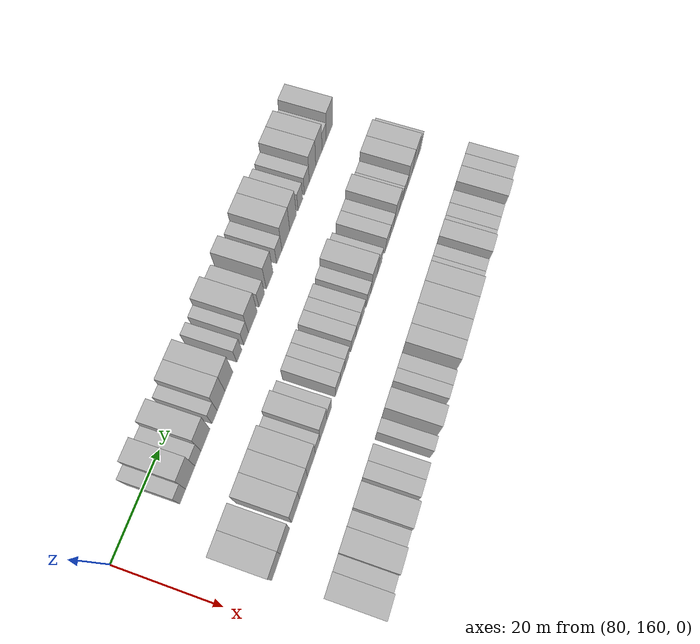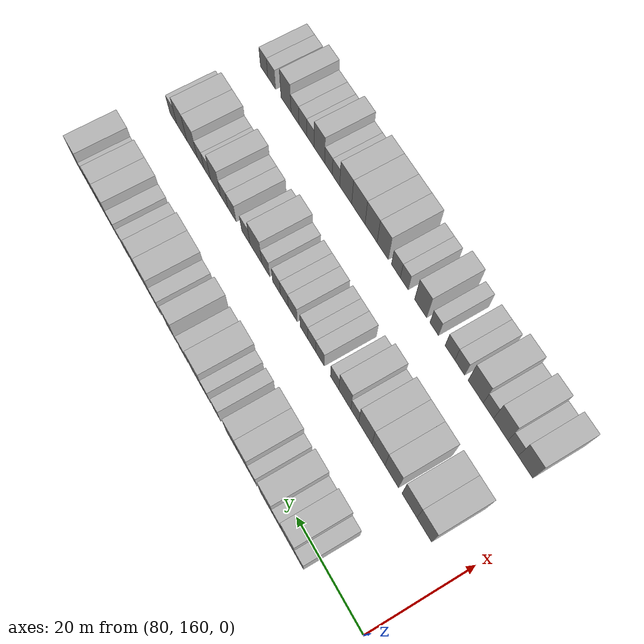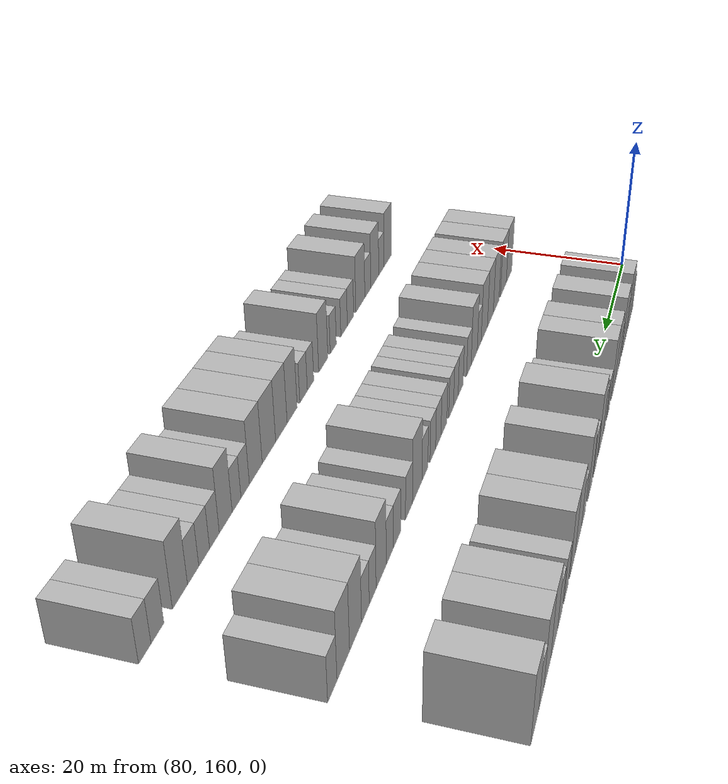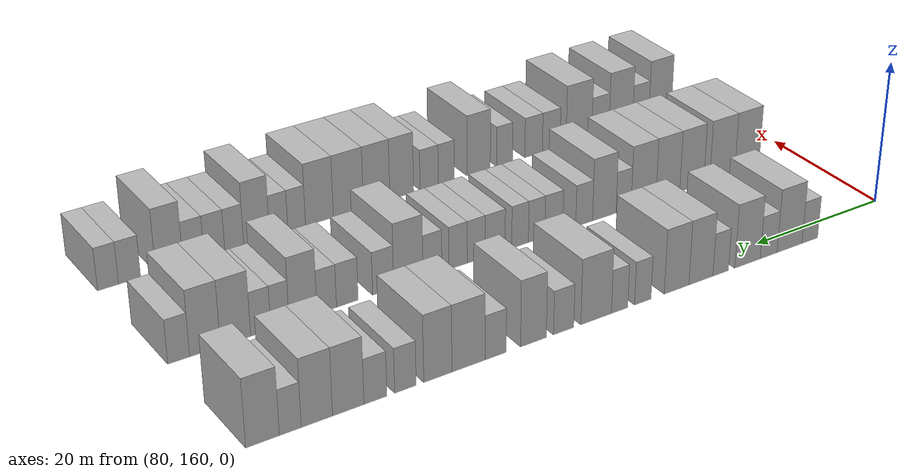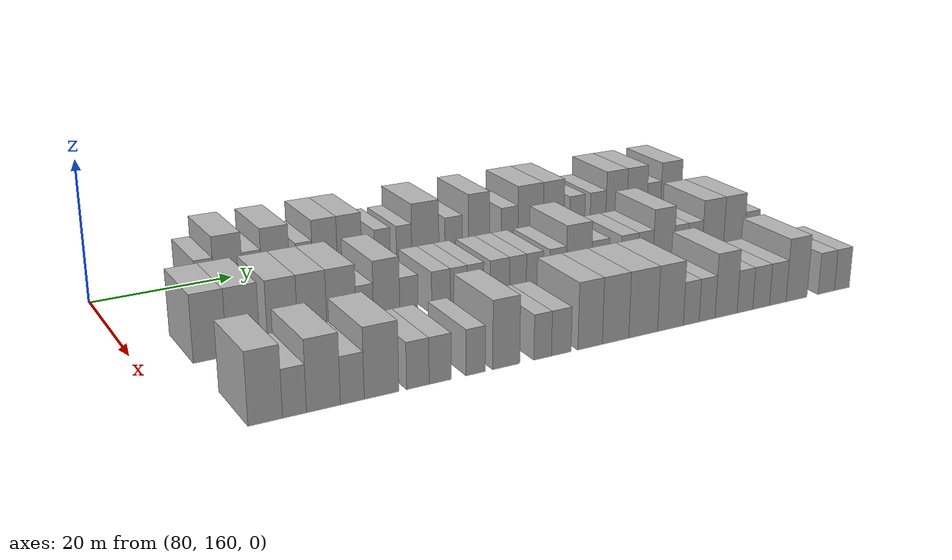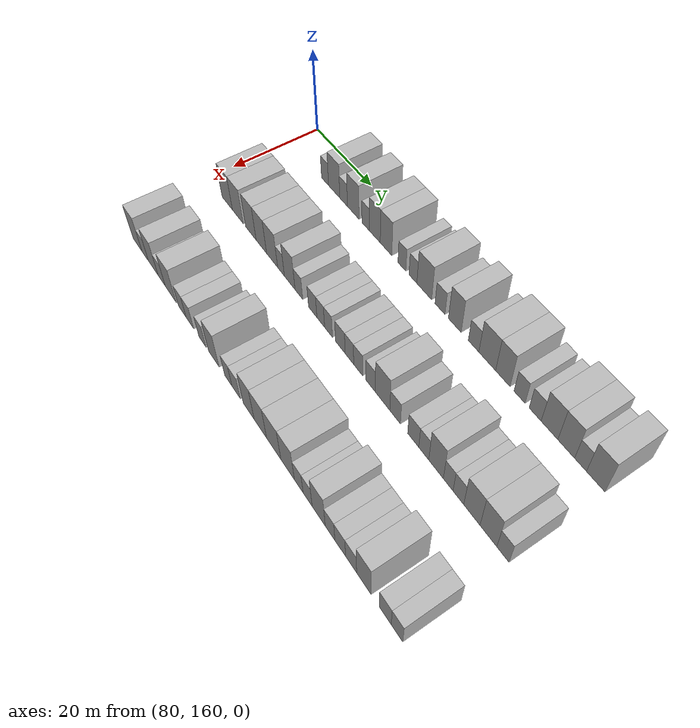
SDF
<sdf version="1.6">
 <world name="default">
  <model name="building_651">
   <static>1</static>
   <pose>82.0000 173.9683 0 0.000000 0.000000 0.000000</pose>
   <link name="link">
    <pose>0 0 3.00 0 0 0</pose>
    <collision name="collision"><geometry><box><size>10.0000 2.6058 6.0000</size></box></geometry></collision>
    <visual name="visual">
     <cast_shadows>0</cast_shadows>
     <geometry><box><size>10.0000 2.6058 6.0000</size></box></geometry>
     <material>
      <script>
       <uri>model://HANNAS_wall/materials/scripts</uri>
       <uri>model://HANNAS_wall/materials/textures</uri>
       <name>vrc/HANNAS_wall</name>
      </script>
     </material>
    </visual>
   </link>
  </model>
  <model name="building_652">
   <static>1</static>
   <pose>82.0000 177.3326 0 0.000000 0.000000 0.000000</pose>
   <link name="link">
    <pose>0 0 4.50 0 0 0</pose>
    <collision name="collision"><geometry><box><size>10.0000 4.1226 9.0000</size></box></geometry></collision>
    <visual name="visual">
     <cast_shadows>0</cast_shadows>
     <geometry><box><size>10.0000 4.1226 9.0000</size></box></geometry>
     <material>
      <script>
       <uri>model://HANNAS_wall/materials/scripts</uri>
       <uri>model://HANNAS_wall/materials/textures</uri>
       <name>vrc/HANNAS_wall</name>
      </script>
     </material>
    </visual>
   </link>
  </model>
  <model name="building_653">
   <static>1</static>
   <pose>82.0000 180.7584 0 0.000000 0.000000 0.000000</pose>
   <link name="link">
    <pose>0 0 3.00 0 0 0</pose>
    <collision name="collision"><geometry><box><size>10.0000 2.7291 6.0000</size></box></geometry></collision>
    <visual name="visual">
     <cast_shadows>0</cast_shadows>
     <geometry><box><size>10.0000 2.7291 6.0000</size></box></geometry>
     <material>
      <script>
       <uri>model://HANNAS_wall/materials/scripts</uri>
       <uri>model://HANNAS_wall/materials/textures</uri>
       <name>vrc/HANNAS_wall</name>
      </script>
     </material>
    </visual>
   </link>
  </model>
  <model name="building_654">
   <static>1</static>
   <pose>82.0000 184.1711 0 0.000000 0.000000 0.000000</pose>
   <link name="link">
    <pose>0 0 4.50 0 0 0</pose>
    <collision name="collision"><geometry><box><size>10.0000 4.0963 9.0000</size></box></geometry></collision>
    <visual name="visual">
     <cast_shadows>0</cast_shadows>
     <geometry><box><size>10.0000 4.0963 9.0000</size></box></geometry>
     <material>
      <script>
       <uri>model://HANNAS_wall/materials/scripts</uri>
       <uri>model://HANNAS_wall/materials/textures</uri>
       <name>vrc/HANNAS_wall</name>
      </script>
     </material>
    </visual>
   </link>
  </model>
  <model name="building_655">
   <static>1</static>
   <pose>82.0000 188.4400 0 0.000000 0.000000 0.000000</pose>
   <link name="link">
    <pose>0 0 3.00 0 0 0</pose>
    <collision name="collision"><geometry><box><size>10.0000 2.4415 6.0000</size></box></geometry></collision>
    <visual name="visual">
     <cast_shadows>0</cast_shadows>
     <geometry><box><size>10.0000 2.4415 6.0000</size></box></geometry>
     <material>
      <script>
       <uri>model://HANNAS_wall/materials/scripts</uri>
       <uri>model://HANNAS_wall/materials/textures</uri>
       <name>vrc/HANNAS_wall</name>
      </script>
     </material>
    </visual>
   </link>
  </model>
  <model name="building_656">
   <static>1</static>
   <pose>82.0000 191.5382 0 0.000000 0.000000 0.000000</pose>
   <link name="link">
    <pose>0 0 4.50 0 0 0</pose>
    <collision name="collision"><geometry><box><size>10.0000 3.7548 9.0000</size></box></geometry></collision>
    <visual name="visual">
     <cast_shadows>0</cast_shadows>
     <geometry><box><size>10.0000 3.7548 9.0000</size></box></geometry>
     <material>
      <script>
       <uri>model://HANNAS_wall/materials/scripts</uri>
       <uri>model://HANNAS_wall/materials/textures</uri>
       <name>vrc/HANNAS_wall</name>
      </script>
     </material>
    </visual>
   </link>
  </model>
  <model name="building_657">
   <static>1</static>
   <pose>82.0000 195.3073 0 0.000000 0.000000 0.000000</pose>
   <link name="link">
    <pose>0 0 4.50 0 0 0</pose>
    <collision name="collision"><geometry><box><size>10.0000 3.7835 9.0000</size></box></geometry></collision>
    <visual name="visual">
     <cast_shadows>0</cast_shadows>
     <geometry><box><size>10.0000 3.7835 9.0000</size></box></geometry>
     <material>
      <script>
       <uri>model://HANNAS_wall/materials/scripts</uri>
       <uri>model://HANNAS_wall/materials/textures</uri>
       <name>vrc/HANNAS_wall</name>
      </script>
     </material>
    </visual>
   </link>
  </model>
  <model name="building_658">
   <static>1</static>
   <pose>82.0000 200.4422 0 0.000000 0.000000 0.000000</pose>
   <link name="link">
    <pose>0 0 3.00 0 0 0</pose>
    <collision name="collision"><geometry><box><size>10.0000 2.4864 6.0000</size></box></geometry></collision>
    <visual name="visual">
     <cast_shadows>0</cast_shadows>
     <geometry><box><size>10.0000 2.4864 6.0000</size></box></geometry>
     <material>
      <script>
       <uri>model://HANNAS_wall/materials/scripts</uri>
       <uri>model://HANNAS_wall/materials/textures</uri>
       <name>vrc/HANNAS_wall</name>
      </script>
     </material>
    </visual>
   </link>
  </model>
  <model name="building_659">
   <static>1</static>
   <pose>82.0000 203.9033 0 0.000000 0.000000 0.000000</pose>
   <link name="link">
    <pose>0 0 3.00 0 0 0</pose>
    <collision name="collision"><geometry><box><size>10.0000 2.4358 6.0000</size></box></geometry></collision>
    <visual name="visual">
     <cast_shadows>0</cast_shadows>
     <geometry><box><size>10.0000 2.4358 6.0000</size></box></geometry>
     <material>
      <script>
       <uri>model://HANNAS_wall/materials/scripts</uri>
       <uri>model://HANNAS_wall/materials/textures</uri>
       <name>vrc/HANNAS_wall</name>
      </script>
     </material>
    </visual>
   </link>
  </model>
  <model name="building_660">
   <static>1</static>
   <pose>82.0000 207.3582 0 0.000000 0.000000 0.000000</pose>
   <link name="link">
    <pose>0 0 4.50 0 0 0</pose>
    <collision name="collision"><geometry><box><size>10.0000 4.4739 9.0000</size></box></geometry></collision>
    <visual name="visual">
     <cast_shadows>0</cast_shadows>
     <geometry><box><size>10.0000 4.4739 9.0000</size></box></geometry>
     <material>
      <script>
       <uri>model://HANNAS_wall/materials/scripts</uri>
       <uri>model://HANNAS_wall/materials/textures</uri>
       <name>vrc/HANNAS_wall</name>
      </script>
     </material>
    </visual>
   </link>
  </model>
  <model name="building_661">
   <static>1</static>
   <pose>82.0000 212.0545 0 0.000000 0.000000 0.000000</pose>
   <link name="link">
    <pose>0 0 3.00 0 0 0</pose>
    <collision name="collision"><geometry><box><size>10.0000 2.9187 6.0000</size></box></geometry></collision>
    <visual name="visual">
     <cast_shadows>0</cast_shadows>
     <geometry><box><size>10.0000 2.9187 6.0000</size></box></geometry>
     <material>
      <script>
       <uri>model://HANNAS_wall/materials/scripts</uri>
       <uri>model://HANNAS_wall/materials/textures</uri>
       <name>vrc/HANNAS_wall</name>
      </script>
     </material>
    </visual>
   </link>
  </model>
  <model name="building_662">
   <static>1</static>
   <pose>82.0000 216.3303 0 0.000000 0.000000 0.000000</pose>
   <link name="link">
    <pose>0 0 4.50 0 0 0</pose>
    <collision name="collision"><geometry><box><size>10.0000 3.6329 9.0000</size></box></geometry></collision>
    <visual name="visual">
     <cast_shadows>0</cast_shadows>
     <geometry><box><size>10.0000 3.6329 9.0000</size></box></geometry>
     <material>
      <script>
       <uri>model://HANNAS_wall/materials/scripts</uri>
       <uri>model://HANNAS_wall/materials/textures</uri>
       <name>vrc/HANNAS_wall</name>
      </script>
     </material>
    </visual>
   </link>
  </model>
  <model name="building_663">
   <static>1</static>
   <pose>82.0000 221.5967 0 0.000000 0.000000 0.000000</pose>
   <link name="link">
    <pose>0 0 3.00 0 0 0</pose>
    <collision name="collision"><geometry><box><size>10.0000 2.8999 6.0000</size></box></geometry></collision>
    <visual name="visual">
     <cast_shadows>0</cast_shadows>
     <geometry><box><size>10.0000 2.8999 6.0000</size></box></geometry>
     <material>
      <script>
       <uri>model://HANNAS_wall/materials/scripts</uri>
       <uri>model://HANNAS_wall/materials/textures</uri>
       <name>vrc/HANNAS_wall</name>
      </script>
     </material>
    </visual>
   </link>
  </model>
  <model name="building_664">
   <static>1</static>
   <pose>82.0000 225.2891 0 0.000000 0.000000 0.000000</pose>
   <link name="link">
    <pose>0 0 4.50 0 0 0</pose>
    <collision name="collision"><geometry><box><size>10.0000 4.4850 9.0000</size></box></geometry></collision>
    <visual name="visual">
     <cast_shadows>0</cast_shadows>
     <geometry><box><size>10.0000 4.4850 9.0000</size></box></geometry>
     <material>
      <script>
       <uri>model://HANNAS_wall/materials/scripts</uri>
       <uri>model://HANNAS_wall/materials/textures</uri>
       <name>vrc/HANNAS_wall</name>
      </script>
     </material>
    </visual>
   </link>
  </model>
  <model name="building_665">
   <static>1</static>
   <pose>82.0000 229.4076 0 0.000000 0.000000 0.000000</pose>
   <link name="link">
    <pose>0 0 4.50 0 0 0</pose>
    <collision name="collision"><geometry><box><size>10.0000 3.7520 9.0000</size></box></geometry></collision>
    <visual name="visual">
     <cast_shadows>0</cast_shadows>
     <geometry><box><size>10.0000 3.7520 9.0000</size></box></geometry>
     <material>
      <script>
       <uri>model://HANNAS_wall/materials/scripts</uri>
       <uri>model://HANNAS_wall/materials/textures</uri>
       <name>vrc/HANNAS_wall</name>
      </script>
     </material>
    </visual>
   </link>
  </model>
  <model name="building_666">
   <static>1</static>
   <pose>82.0000 233.6837 0 0.000000 0.000000 0.000000</pose>
   <link name="link">
    <pose>0 0 3.00 0 0 0</pose>
    <collision name="collision"><geometry><box><size>10.0000 2.8002 6.0000</size></box></geometry></collision>
    <visual name="visual">
     <cast_shadows>0</cast_shadows>
     <geometry><box><size>10.0000 2.8002 6.0000</size></box></geometry>
     <material>
      <script>
       <uri>model://HANNAS_wall/materials/scripts</uri>
       <uri>model://HANNAS_wall/materials/textures</uri>
       <name>vrc/HANNAS_wall</name>
      </script>
     </material>
    </visual>
   </link>
  </model>
  <model name="building_667">
   <static>1</static>
   <pose>82.0000 237.5527 0 0.000000 0.000000 0.000000</pose>
   <link name="link">
    <pose>0 0 3.00 0 0 0</pose>
    <collision name="collision"><geometry><box><size>10.0000 2.9378 6.0000</size></box></geometry></collision>
    <visual name="visual">
     <cast_shadows>0</cast_shadows>
     <geometry><box><size>10.0000 2.9378 6.0000</size></box></geometry>
     <material>
      <script>
       <uri>model://HANNAS_wall/materials/scripts</uri>
       <uri>model://HANNAS_wall/materials/textures</uri>
       <name>vrc/HANNAS_wall</name>
      </script>
     </material>
    </visual>
   </link>
  </model>
  <model name="building_668">
   <static>1</static>
   <pose>82.0000 241.0112 0 0.000000 0.000000 0.000000</pose>
   <link name="link">
    <pose>0 0 4.50 0 0 0</pose>
    <collision name="collision"><geometry><box><size>10.0000 3.9792 9.0000</size></box></geometry></collision>
    <visual name="visual">
     <cast_shadows>0</cast_shadows>
     <geometry><box><size>10.0000 3.9792 9.0000</size></box></geometry>
     <material>
      <script>
       <uri>model://HANNAS_wall/materials/scripts</uri>
       <uri>model://HANNAS_wall/materials/textures</uri>
       <name>vrc/HANNAS_wall</name>
      </script>
     </material>
    </visual>
   </link>
  </model>
  <model name="building_669">
   <static>1</static>
   <pose>82.0000 244.9432 0 0.000000 0.000000 0.000000</pose>
   <link name="link">
    <pose>0 0 4.50 0 0 0</pose>
    <collision name="collision"><geometry><box><size>10.0000 3.8849 9.0000</size></box></geometry></collision>
    <visual name="visual">
     <cast_shadows>0</cast_shadows>
     <geometry><box><size>10.0000 3.8849 9.0000</size></box></geometry>
     <material>
      <script>
       <uri>model://HANNAS_wall/materials/scripts</uri>
       <uri>model://HANNAS_wall/materials/textures</uri>
       <name>vrc/HANNAS_wall</name>
      </script>
     </material>
    </visual>
   </link>
  </model>
  <model name="building_670">
   <static>1</static>
   <pose>82.0000 248.2212 0 0.000000 0.000000 0.000000</pose>
   <link name="link">
    <pose>0 0 3.00 0 0 0</pose>
    <collision name="collision"><geometry><box><size>10.0000 2.6710 6.0000</size></box></geometry></collision>
    <visual name="visual">
     <cast_shadows>0</cast_shadows>
     <geometry><box><size>10.0000 2.6710 6.0000</size></box></geometry>
     <material>
      <script>
       <uri>model://HANNAS_wall/materials/scripts</uri>
       <uri>model://HANNAS_wall/materials/textures</uri>
       <name>vrc/HANNAS_wall</name>
      </script>
     </material>
    </visual>
   </link>
  </model>
  <model name="building_671">
   <static>1</static>
   <pose>82.0000 251.5903 0 0.000000 0.000000 0.000000</pose>
   <link name="link">
    <pose>0 0 4.50 0 0 0</pose>
    <collision name="collision"><geometry><box><size>10.0000 4.0673 9.0000</size></box></geometry></collision>
    <visual name="visual">
     <cast_shadows>0</cast_shadows>
     <geometry><box><size>10.0000 4.0673 9.0000</size></box></geometry>
     <material>
      <script>
       <uri>model://HANNAS_wall/materials/scripts</uri>
       <uri>model://HANNAS_wall/materials/textures</uri>
       <name>vrc/HANNAS_wall</name>
      </script>
     </material>
    </visual>
   </link>
  </model>
  <model name="building_831">
   <static>1</static>
   <pose>101.0000 168.3895 0 0.000000 0.000000 0.000000</pose>
   <link name="link">
    <pose>0 0 4.50 0 0 0</pose>
    <collision name="collision"><geometry><box><size>10.0000 4.2459 9.0000</size></box></geometry></collision>
    <visual name="visual">
     <cast_shadows>0</cast_shadows>
     <geometry><box><size>10.0000 4.2459 9.0000</size></box></geometry>
     <material>
      <script>
       <uri>model://HANNAS_wall/materials/scripts</uri>
       <uri>model://HANNAS_wall/materials/textures</uri>
       <name>vrc/HANNAS_wall</name>
      </script>
     </material>
    </visual>
   </link>
  </model>
  <model name="building_832">
   <static>1</static>
   <pose>101.0000 172.6775 0 0.000000 0.000000 0.000000</pose>
   <link name="link">
    <pose>0 0 4.50 0 0 0</pose>
    <collision name="collision"><geometry><box><size>10.0000 4.3300 9.0000</size></box></geometry></collision>
    <visual name="visual">
     <cast_shadows>0</cast_shadows>
     <geometry><box><size>10.0000 4.3300 9.0000</size></box></geometry>
     <material>
      <script>
       <uri>model://HANNAS_wall/materials/scripts</uri>
       <uri>model://HANNAS_wall/materials/textures</uri>
       <name>vrc/HANNAS_wall</name>
      </script>
     </material>
    </visual>
   </link>
  </model>
  <model name="building_833">
   <static>1</static>
   <pose>101.0000 177.8635 0 0.000000 0.000000 0.000000</pose>
   <link name="link">
    <pose>0 0 4.50 0 0 0</pose>
    <collision name="collision"><geometry><box><size>10.0000 4.0421 9.0000</size></box></geometry></collision>
    <visual name="visual">
     <cast_shadows>0</cast_shadows>
     <geometry><box><size>10.0000 4.0421 9.0000</size></box></geometry>
     <material>
      <script>
       <uri>model://HANNAS_wall/materials/scripts</uri>
       <uri>model://HANNAS_wall/materials/textures</uri>
       <name>vrc/HANNAS_wall</name>
      </script>
     </material>
    </visual>
   </link>
  </model>
  <model name="building_834">
   <static>1</static>
   <pose>101.0000 181.8662 0 0.000000 0.000000 0.000000</pose>
   <link name="link">
    <pose>0 0 4.50 0 0 0</pose>
    <collision name="collision"><geometry><box><size>10.0000 3.9632 9.0000</size></box></geometry></collision>
    <visual name="visual">
     <cast_shadows>0</cast_shadows>
     <geometry><box><size>10.0000 3.9632 9.0000</size></box></geometry>
     <material>
      <script>
       <uri>model://HANNAS_wall/materials/scripts</uri>
       <uri>model://HANNAS_wall/materials/textures</uri>
       <name>vrc/HANNAS_wall</name>
      </script>
     </material>
    </visual>
   </link>
  </model>
  <model name="building_835">
   <static>1</static>
   <pose>101.0000 185.8865 0 0.000000 0.000000 0.000000</pose>
   <link name="link">
    <pose>0 0 4.50 0 0 0</pose>
    <collision name="collision"><geometry><box><size>10.0000 4.0775 9.0000</size></box></geometry></collision>
    <visual name="visual">
     <cast_shadows>0</cast_shadows>
     <geometry><box><size>10.0000 4.0775 9.0000</size></box></geometry>
     <material>
      <script>
       <uri>model://HANNAS_wall/materials/scripts</uri>
       <uri>model://HANNAS_wall/materials/textures</uri>
       <name>vrc/HANNAS_wall</name>
      </script>
     </material>
    </visual>
   </link>
  </model>
  <model name="building_836">
   <static>1</static>
   <pose>101.0000 189.1425 0 0.000000 0.000000 0.000000</pose>
   <link name="link">
    <pose>0 0 3.00 0 0 0</pose>
    <collision name="collision"><geometry><box><size>10.0000 2.4345 6.0000</size></box></geometry></collision>
    <visual name="visual">
     <cast_shadows>0</cast_shadows>
     <geometry><box><size>10.0000 2.4345 6.0000</size></box></geometry>
     <material>
      <script>
       <uri>model://HANNAS_wall/materials/scripts</uri>
       <uri>model://HANNAS_wall/materials/textures</uri>
       <name>vrc/HANNAS_wall</name>
      </script>
     </material>
    </visual>
   </link>
  </model>
  <model name="building_837">
   <static>1</static>
   <pose>101.0000 192.2405 0 0.000000 0.000000 0.000000</pose>
   <link name="link">
    <pose>0 0 4.50 0 0 0</pose>
    <collision name="collision"><geometry><box><size>10.0000 3.7615 9.0000</size></box></geometry></collision>
    <visual name="visual">
     <cast_shadows>0</cast_shadows>
     <geometry><box><size>10.0000 3.7615 9.0000</size></box></geometry>
     <material>
      <script>
       <uri>model://HANNAS_wall/materials/scripts</uri>
       <uri>model://HANNAS_wall/materials/textures</uri>
       <name>vrc/HANNAS_wall</name>
      </script>
     </material>
    </visual>
   </link>
  </model>
  <model name="building_838">
   <static>1</static>
   <pose>101.0000 195.4514 0 0.000000 0.000000 0.000000</pose>
   <link name="link">
    <pose>0 0 3.00 0 0 0</pose>
    <collision name="collision"><geometry><box><size>10.0000 2.6603 6.0000</size></box></geometry></collision>
    <visual name="visual">
     <cast_shadows>0</cast_shadows>
     <geometry><box><size>10.0000 2.6603 6.0000</size></box></geometry>
     <material>
      <script>
       <uri>model://HANNAS_wall/materials/scripts</uri>
       <uri>model://HANNAS_wall/materials/textures</uri>
       <name>vrc/HANNAS_wall</name>
      </script>
     </material>
    </visual>
   </link>
  </model>
  <model name="building_839">
   <static>1</static>
   <pose>101.0000 200.1791 0 0.000000 0.000000 0.000000</pose>
   <link name="link">
    <pose>0 0 3.00 0 0 0</pose>
    <collision name="collision"><geometry><box><size>10.0000 2.7952 6.0000</size></box></geometry></collision>
    <visual name="visual">
     <cast_shadows>0</cast_shadows>
     <geometry><box><size>10.0000 2.7952 6.0000</size></box></geometry>
     <material>
      <script>
       <uri>model://HANNAS_wall/materials/scripts</uri>
       <uri>model://HANNAS_wall/materials/textures</uri>
       <name>vrc/HANNAS_wall</name>
      </script>
     </material>
    </visual>
   </link>
  </model>
  <model name="building_840">
   <static>1</static>
   <pose>101.0000 202.8418 0 0.000000 0.000000 0.000000</pose>
   <link name="link">
    <pose>0 0 3.00 0 0 0</pose>
    <collision name="collision"><geometry><box><size>10.0000 2.5302 6.0000</size></box></geometry></collision>
    <visual name="visual">
     <cast_shadows>0</cast_shadows>
     <geometry><box><size>10.0000 2.5302 6.0000</size></box></geometry>
     <material>
      <script>
       <uri>model://HANNAS_wall/materials/scripts</uri>
       <uri>model://HANNAS_wall/materials/textures</uri>
       <name>vrc/HANNAS_wall</name>
      </script>
     </material>
    </visual>
   </link>
  </model>
  <model name="building_841">
   <static>1</static>
   <pose>101.0000 205.3772 0 0.000000 0.000000 0.000000</pose>
   <link name="link">
    <pose>0 0 3.00 0 0 0</pose>
    <collision name="collision"><geometry><box><size>10.0000 2.5405 6.0000</size></box></geometry></collision>
    <visual name="visual">
     <cast_shadows>0</cast_shadows>
     <geometry><box><size>10.0000 2.5405 6.0000</size></box></geometry>
     <material>
      <script>
       <uri>model://HANNAS_wall/materials/scripts</uri>
       <uri>model://HANNAS_wall/materials/textures</uri>
       <name>vrc/HANNAS_wall</name>
      </script>
     </material>
    </visual>
   </link>
  </model>
  <model name="building_842">
   <static>1</static>
   <pose>101.0000 209.1440 0 0.000000 0.000000 0.000000</pose>
   <link name="link">
    <pose>0 0 3.00 0 0 0</pose>
    <collision name="collision"><geometry><box><size>10.0000 2.9933 6.0000</size></box></geometry></collision>
    <visual name="visual">
     <cast_shadows>0</cast_shadows>
     <geometry><box><size>10.0000 2.9933 6.0000</size></box></geometry>
     <material>
      <script>
       <uri>model://HANNAS_wall/materials/scripts</uri>
       <uri>model://HANNAS_wall/materials/textures</uri>
       <name>vrc/HANNAS_wall</name>
      </script>
     </material>
    </visual>
   </link>
  </model>
  <model name="building_843">
   <static>1</static>
   <pose>101.0000 211.9645 0 0.000000 0.000000 0.000000</pose>
   <link name="link">
    <pose>0 0 3.00 0 0 0</pose>
    <collision name="collision"><geometry><box><size>10.0000 2.6475 6.0000</size></box></geometry></collision>
    <visual name="visual">
     <cast_shadows>0</cast_shadows>
     <geometry><box><size>10.0000 2.6475 6.0000</size></box></geometry>
     <material>
      <script>
       <uri>model://HANNAS_wall/materials/scripts</uri>
       <uri>model://HANNAS_wall/materials/textures</uri>
       <name>vrc/HANNAS_wall</name>
      </script>
     </material>
    </visual>
   </link>
  </model>
  <model name="building_844">
   <static>1</static>
   <pose>101.0000 214.6370 0 0.000000 0.000000 0.000000</pose>
   <link name="link">
    <pose>0 0 3.00 0 0 0</pose>
    <collision name="collision"><geometry><box><size>10.0000 2.6977 6.0000</size></box></geometry></collision>
    <visual name="visual">
     <cast_shadows>0</cast_shadows>
     <geometry><box><size>10.0000 2.6977 6.0000</size></box></geometry>
     <material>
      <script>
       <uri>model://HANNAS_wall/materials/scripts</uri>
       <uri>model://HANNAS_wall/materials/textures</uri>
       <name>vrc/HANNAS_wall</name>
      </script>
     </material>
    </visual>
   </link>
  </model>
  <model name="building_845">
   <static>1</static>
   <pose>101.0000 218.3506 0 0.000000 0.000000 0.000000</pose>
   <link name="link">
    <pose>0 0 3.00 0 0 0</pose>
    <collision name="collision"><geometry><box><size>10.0000 2.7295 6.0000</size></box></geometry></collision>
    <visual name="visual">
     <cast_shadows>0</cast_shadows>
     <geometry><box><size>10.0000 2.7295 6.0000</size></box></geometry>
     <material>
      <script>
       <uri>model://HANNAS_wall/materials/scripts</uri>
       <uri>model://HANNAS_wall/materials/textures</uri>
       <name>vrc/HANNAS_wall</name>
      </script>
     </material>
    </visual>
   </link>
  </model>
  <model name="building_846">
   <static>1</static>
   <pose>101.0000 221.8118 0 0.000000 0.000000 0.000000</pose>
   <link name="link">
    <pose>0 0 4.50 0 0 0</pose>
    <collision name="collision"><geometry><box><size>10.0000 4.1928 9.0000</size></box></geometry></collision>
    <visual name="visual">
     <cast_shadows>0</cast_shadows>
     <geometry><box><size>10.0000 4.1928 9.0000</size></box></geometry>
     <material>
      <script>
       <uri>model://HANNAS_wall/materials/scripts</uri>
       <uri>model://HANNAS_wall/materials/textures</uri>
       <name>vrc/HANNAS_wall</name>
      </script>
     </material>
    </visual>
   </link>
  </model>
  <model name="building_847">
   <static>1</static>
   <pose>101.0000 225.3882 0 0.000000 0.000000 0.000000</pose>
   <link name="link">
    <pose>0 0 3.00 0 0 0</pose>
    <collision name="collision"><geometry><box><size>10.0000 2.9600 6.0000</size></box></geometry></collision>
    <visual name="visual">
     <cast_shadows>0</cast_shadows>
     <geometry><box><size>10.0000 2.9600 6.0000</size></box></geometry>
     <material>
      <script>
       <uri>model://HANNAS_wall/materials/scripts</uri>
       <uri>model://HANNAS_wall/materials/textures</uri>
       <name>vrc/HANNAS_wall</name>
      </script>
     </material>
    </visual>
   </link>
  </model>
  <model name="building_848">
   <static>1</static>
   <pose>101.0000 230.3605 0 0.000000 0.000000 0.000000</pose>
   <link name="link">
    <pose>0 0 3.00 0 0 0</pose>
    <collision name="collision"><geometry><box><size>10.0000 2.9847 6.0000</size></box></geometry></collision>
    <visual name="visual">
     <cast_shadows>0</cast_shadows>
     <geometry><box><size>10.0000 2.9847 6.0000</size></box></geometry>
     <material>
      <script>
       <uri>model://HANNAS_wall/materials/scripts</uri>
       <uri>model://HANNAS_wall/materials/textures</uri>
       <name>vrc/HANNAS_wall</name>
      </script>
     </material>
    </visual>
   </link>
  </model>
  <model name="building_849">
   <static>1</static>
   <pose>101.0000 233.1683 0 0.000000 0.000000 0.000000</pose>
   <link name="link">
    <pose>0 0 3.00 0 0 0</pose>
    <collision name="collision"><geometry><box><size>10.0000 2.6309 6.0000</size></box></geometry></collision>
    <visual name="visual">
     <cast_shadows>0</cast_shadows>
     <geometry><box><size>10.0000 2.6309 6.0000</size></box></geometry>
     <material>
      <script>
       <uri>model://HANNAS_wall/materials/scripts</uri>
       <uri>model://HANNAS_wall/materials/textures</uri>
       <name>vrc/HANNAS_wall</name>
      </script>
     </material>
    </visual>
   </link>
  </model>
  <model name="building_850">
   <static>1</static>
   <pose>101.0000 236.3592 0 0.000000 0.000000 0.000000</pose>
   <link name="link">
    <pose>0 0 4.50 0 0 0</pose>
    <collision name="collision"><geometry><box><size>10.0000 3.7508 9.0000</size></box></geometry></collision>
    <visual name="visual">
     <cast_shadows>0</cast_shadows>
     <geometry><box><size>10.0000 3.7508 9.0000</size></box></geometry>
     <material>
      <script>
       <uri>model://HANNAS_wall/materials/scripts</uri>
       <uri>model://HANNAS_wall/materials/textures</uri>
       <name>vrc/HANNAS_wall</name>
      </script>
     </material>
    </visual>
   </link>
  </model>
  <model name="building_851">
   <static>1</static>
   <pose>101.0000 239.4488 0 0.000000 0.000000 0.000000</pose>
   <link name="link">
    <pose>0 0 3.00 0 0 0</pose>
    <collision name="collision"><geometry><box><size>10.0000 2.4284 6.0000</size></box></geometry></collision>
    <visual name="visual">
     <cast_shadows>0</cast_shadows>
     <geometry><box><size>10.0000 2.4284 6.0000</size></box></geometry>
     <material>
      <script>
       <uri>model://HANNAS_wall/materials/scripts</uri>
       <uri>model://HANNAS_wall/materials/textures</uri>
       <name>vrc/HANNAS_wall</name>
      </script>
     </material>
    </visual>
   </link>
  </model>
  <model name="building_852">
   <static>1</static>
   <pose>101.0000 241.9811 0 0.000000 0.000000 0.000000</pose>
   <link name="link">
    <pose>0 0 3.00 0 0 0</pose>
    <collision name="collision"><geometry><box><size>10.0000 2.6361 6.0000</size></box></geometry></collision>
    <visual name="visual">
     <cast_shadows>0</cast_shadows>
     <geometry><box><size>10.0000 2.6361 6.0000</size></box></geometry>
     <material>
      <script>
       <uri>model://HANNAS_wall/materials/scripts</uri>
       <uri>model://HANNAS_wall/materials/textures</uri>
       <name>vrc/HANNAS_wall</name>
      </script>
     </material>
    </visual>
   </link>
  </model>
  <model name="building_853">
   <static>1</static>
   <pose>101.0000 245.2603 0 0.000000 0.000000 0.000000</pose>
   <link name="link">
    <pose>0 0 4.50 0 0 0</pose>
    <collision name="collision"><geometry><box><size>10.0000 3.9224 9.0000</size></box></geometry></collision>
    <visual name="visual">
     <cast_shadows>0</cast_shadows>
     <geometry><box><size>10.0000 3.9224 9.0000</size></box></geometry>
     <material>
      <script>
       <uri>model://HANNAS_wall/materials/scripts</uri>
       <uri>model://HANNAS_wall/materials/textures</uri>
       <name>vrc/HANNAS_wall</name>
      </script>
     </material>
    </visual>
   </link>
  </model>
  <model name="building_854">
   <static>1</static>
   <pose>101.0000 249.1747 0 0.000000 0.000000 0.000000</pose>
   <link name="link">
    <pose>0 0 4.50 0 0 0</pose>
    <collision name="collision"><geometry><box><size>10.0000 3.9064 9.0000</size></box></geometry></collision>
    <visual name="visual">
     <cast_shadows>0</cast_shadows>
     <geometry><box><size>10.0000 3.9064 9.0000</size></box></geometry>
     <material>
      <script>
       <uri>model://HANNAS_wall/materials/scripts</uri>
       <uri>model://HANNAS_wall/materials/textures</uri>
       <name>vrc/HANNAS_wall</name>
      </script>
     </material>
    </visual>
   </link>
  </model>
  <model name="building_855">
   <static>1</static>
   <pose>101.0000 252.5063 0 0.000000 0.000000 0.000000</pose>
   <link name="link">
    <pose>0 0 3.00 0 0 0</pose>
    <collision name="collision"><geometry><box><size>10.0000 2.7569 6.0000</size></box></geometry></collision>
    <visual name="visual">
     <cast_shadows>0</cast_shadows>
     <geometry><box><size>10.0000 2.7569 6.0000</size></box></geometry>
     <material>
      <script>
       <uri>model://HANNAS_wall/materials/scripts</uri>
       <uri>model://HANNAS_wall/materials/textures</uri>
       <name>vrc/HANNAS_wall</name>
      </script>
     </material>
    </visual>
   </link>
  </model>
  <model name="building_1015">
   <static>1</static>
   <pose>120.0000 168.5036 0 0.000000 0.000000 0.000000</pose>
   <link name="link">
    <pose>0 0 4.50 0 0 0</pose>
    <collision name="collision"><geometry><box><size>10.0000 4.0538 9.0000</size></box></geometry></collision>
    <visual name="visual">
     <cast_shadows>0</cast_shadows>
     <geometry><box><size>10.0000 4.0538 9.0000</size></box></geometry>
     <material>
      <script>
       <uri>model://HANNAS_wall/materials/scripts</uri>
       <uri>model://HANNAS_wall/materials/textures</uri>
       <name>vrc/HANNAS_wall</name>
      </script>
     </material>
    </visual>
   </link>
  </model>
  <model name="building_1016">
   <static>1</static>
   <pose>120.0000 171.9539 0 0.000000 0.000000 0.000000</pose>
   <link name="link">
    <pose>0 0 3.00 0 0 0</pose>
    <collision name="collision"><geometry><box><size>10.0000 2.8468 6.0000</size></box></geometry></collision>
    <visual name="visual">
     <cast_shadows>0</cast_shadows>
     <geometry><box><size>10.0000 2.8468 6.0000</size></box></geometry>
     <material>
      <script>
       <uri>model://HANNAS_wall/materials/scripts</uri>
       <uri>model://HANNAS_wall/materials/textures</uri>
       <name>vrc/HANNAS_wall</name>
      </script>
     </material>
    </visual>
   </link>
  </model>
  <model name="building_1017">
   <static>1</static>
   <pose>120.0000 175.4474 0 0.000000 0.000000 0.000000</pose>
   <link name="link">
    <pose>0 0 4.50 0 0 0</pose>
    <collision name="collision"><geometry><box><size>10.0000 4.1403 9.0000</size></box></geometry></collision>
    <visual name="visual">
     <cast_shadows>0</cast_shadows>
     <geometry><box><size>10.0000 4.1403 9.0000</size></box></geometry>
     <material>
      <script>
       <uri>model://HANNAS_wall/materials/scripts</uri>
       <uri>model://HANNAS_wall/materials/textures</uri>
       <name>vrc/HANNAS_wall</name>
      </script>
     </material>
    </visual>
   </link>
  </model>
  <model name="building_1018">
   <static>1</static>
   <pose>120.0000 178.9986 0 0.000000 0.000000 0.000000</pose>
   <link name="link">
    <pose>0 0 3.00 0 0 0</pose>
    <collision name="collision"><geometry><box><size>10.0000 2.9621 6.0000</size></box></geometry></collision>
    <visual name="visual">
     <cast_shadows>0</cast_shadows>
     <geometry><box><size>10.0000 2.9621 6.0000</size></box></geometry>
     <material>
      <script>
       <uri>model://HANNAS_wall/materials/scripts</uri>
       <uri>model://HANNAS_wall/materials/textures</uri>
       <name>vrc/HANNAS_wall</name>
      </script>
     </material>
    </visual>
   </link>
  </model>
  <model name="building_1019">
   <static>1</static>
   <pose>120.0000 182.6797 0 0.000000 0.000000 0.000000</pose>
   <link name="link">
    <pose>0 0 4.50 0 0 0</pose>
    <collision name="collision"><geometry><box><size>10.0000 4.4001 9.0000</size></box></geometry></collision>
    <visual name="visual">
     <cast_shadows>0</cast_shadows>
     <geometry><box><size>10.0000 4.4001 9.0000</size></box></geometry>
     <material>
      <script>
       <uri>model://HANNAS_wall/materials/scripts</uri>
       <uri>model://HANNAS_wall/materials/textures</uri>
       <name>vrc/HANNAS_wall</name>
      </script>
     </material>
    </visual>
   </link>
  </model>
  <model name="building_1020">
   <static>1</static>
   <pose>120.0000 187.3567 0 0.000000 0.000000 0.000000</pose>
   <link name="link">
    <pose>0 0 3.00 0 0 0</pose>
    <collision name="collision"><geometry><box><size>10.0000 2.9538 6.0000</size></box></geometry></collision>
    <visual name="visual">
     <cast_shadows>0</cast_shadows>
     <geometry><box><size>10.0000 2.9538 6.0000</size></box></geometry>
     <material>
      <script>
       <uri>model://HANNAS_wall/materials/scripts</uri>
       <uri>model://HANNAS_wall/materials/textures</uri>
       <name>vrc/HANNAS_wall</name>
      </script>
     </material>
    </visual>
   </link>
  </model>
  <model name="building_1021">
   <static>1</static>
   <pose>120.0000 190.2963 0 0.000000 0.000000 0.000000</pose>
   <link name="link">
    <pose>0 0 3.00 0 0 0</pose>
    <collision name="collision"><geometry><box><size>10.0000 2.9254 6.0000</size></box></geometry></collision>
    <visual name="visual">
     <cast_shadows>0</cast_shadows>
     <geometry><box><size>10.0000 2.9254 6.0000</size></box></geometry>
     <material>
      <script>
       <uri>model://HANNAS_wall/materials/scripts</uri>
       <uri>model://HANNAS_wall/materials/textures</uri>
       <name>vrc/HANNAS_wall</name>
      </script>
     </material>
    </visual>
   </link>
  </model>
  <model name="building_1022">
   <static>1</static>
   <pose>120.0000 195.0743 0 0.000000 0.000000 0.000000</pose>
   <link name="link">
    <pose>0 0 3.00 0 0 0</pose>
    <collision name="collision"><geometry><box><size>10.0000 2.6306 6.0000</size></box></geometry></collision>
    <visual name="visual">
     <cast_shadows>0</cast_shadows>
     <geometry><box><size>10.0000 2.6306 6.0000</size></box></geometry>
     <material>
      <script>
       <uri>model://HANNAS_wall/materials/scripts</uri>
       <uri>model://HANNAS_wall/materials/textures</uri>
       <name>vrc/HANNAS_wall</name>
      </script>
     </material>
    </visual>
   </link>
  </model>
  <model name="building_1023">
   <static>1</static>
   <pose>120.0000 199.2739 0 0.000000 0.000000 0.000000</pose>
   <link name="link">
    <pose>0 0 4.50 0 0 0</pose>
    <collision name="collision"><geometry><box><size>10.0000 3.7686 9.0000</size></box></geometry></collision>
    <visual name="visual">
     <cast_shadows>0</cast_shadows>
     <geometry><box><size>10.0000 3.7686 9.0000</size></box></geometry>
     <material>
      <script>
       <uri>model://HANNAS_wall/materials/scripts</uri>
       <uri>model://HANNAS_wall/materials/textures</uri>
       <name>vrc/HANNAS_wall</name>
      </script>
     </material>
    </visual>
   </link>
  </model>
  <model name="building_1024">
   <static>1</static>
   <pose>120.0000 204.4187 0 0.000000 0.000000 0.000000</pose>
   <link name="link">
    <pose>0 0 3.00 0 0 0</pose>
    <collision name="collision"><geometry><box><size>10.0000 2.5211 6.0000</size></box></geometry></collision>
    <visual name="visual">
     <cast_shadows>0</cast_shadows>
     <geometry><box><size>10.0000 2.5211 6.0000</size></box></geometry>
     <material>
      <script>
       <uri>model://HANNAS_wall/materials/scripts</uri>
       <uri>model://HANNAS_wall/materials/textures</uri>
       <name>vrc/HANNAS_wall</name>
      </script>
     </material>
    </visual>
   </link>
  </model>
  <model name="building_1025">
   <static>1</static>
   <pose>120.0000 207.1046 0 0.000000 0.000000 0.000000</pose>
   <link name="link">
    <pose>0 0 3.00 0 0 0</pose>
    <collision name="collision"><geometry><box><size>10.0000 2.8506 6.0000</size></box></geometry></collision>
    <visual name="visual">
     <cast_shadows>0</cast_shadows>
     <geometry><box><size>10.0000 2.8506 6.0000</size></box></geometry>
     <material>
      <script>
       <uri>model://HANNAS_wall/materials/scripts</uri>
       <uri>model://HANNAS_wall/materials/textures</uri>
       <name>vrc/HANNAS_wall</name>
      </script>
     </material>
    </visual>
   </link>
  </model>
  <model name="building_1026">
   <static>1</static>
   <pose>120.0000 211.3550 0 0.000000 0.000000 0.000000</pose>
   <link name="link">
    <pose>0 0 4.50 0 0 0</pose>
    <collision name="collision"><geometry><box><size>10.0000 3.6503 9.0000</size></box></geometry></collision>
    <visual name="visual">
     <cast_shadows>0</cast_shadows>
     <geometry><box><size>10.0000 3.6503 9.0000</size></box></geometry>
     <material>
      <script>
       <uri>model://HANNAS_wall/materials/scripts</uri>
       <uri>model://HANNAS_wall/materials/textures</uri>
       <name>vrc/HANNAS_wall</name>
      </script>
     </material>
    </visual>
   </link>
  </model>
  <model name="building_1027">
   <static>1</static>
   <pose>120.0000 215.1849 0 0.000000 0.000000 0.000000</pose>
   <link name="link">
    <pose>0 0 4.50 0 0 0</pose>
    <collision name="collision"><geometry><box><size>10.0000 4.0094 9.0000</size></box></geometry></collision>
    <visual name="visual">
     <cast_shadows>0</cast_shadows>
     <geometry><box><size>10.0000 4.0094 9.0000</size></box></geometry>
     <material>
      <script>
       <uri>model://HANNAS_wall/materials/scripts</uri>
       <uri>model://HANNAS_wall/materials/textures</uri>
       <name>vrc/HANNAS_wall</name>
      </script>
     </material>
    </visual>
   </link>
  </model>
  <model name="building_1028">
   <static>1</static>
   <pose>120.0000 219.4239 0 0.000000 0.000000 0.000000</pose>
   <link name="link">
    <pose>0 0 4.50 0 0 0</pose>
    <collision name="collision"><geometry><box><size>10.0000 4.4686 9.0000</size></box></geometry></collision>
    <visual name="visual">
     <cast_shadows>0</cast_shadows>
     <geometry><box><size>10.0000 4.4686 9.0000</size></box></geometry>
     <material>
      <script>
       <uri>model://HANNAS_wall/materials/scripts</uri>
       <uri>model://HANNAS_wall/materials/textures</uri>
       <name>vrc/HANNAS_wall</name>
      </script>
     </material>
    </visual>
   </link>
  </model>
  <model name="building_1029">
   <static>1</static>
   <pose>120.0000 223.7004 0 0.000000 0.000000 0.000000</pose>
   <link name="link">
    <pose>0 0 4.50 0 0 0</pose>
    <collision name="collision"><geometry><box><size>10.0000 4.0843 9.0000</size></box></geometry></collision>
    <visual name="visual">
     <cast_shadows>0</cast_shadows>
     <geometry><box><size>10.0000 4.0843 9.0000</size></box></geometry>
     <material>
      <script>
       <uri>model://HANNAS_wall/materials/scripts</uri>
       <uri>model://HANNAS_wall/materials/textures</uri>
       <name>vrc/HANNAS_wall</name>
      </script>
     </material>
    </visual>
   </link>
  </model>
  <model name="building_1030">
   <static>1</static>
   <pose>120.0000 227.0198 0 0.000000 0.000000 0.000000</pose>
   <link name="link">
    <pose>0 0 3.00 0 0 0</pose>
    <collision name="collision"><geometry><box><size>10.0000 2.5546 6.0000</size></box></geometry></collision>
    <visual name="visual">
     <cast_shadows>0</cast_shadows>
     <geometry><box><size>10.0000 2.5546 6.0000</size></box></geometry>
     <material>
      <script>
       <uri>model://HANNAS_wall/materials/scripts</uri>
       <uri>model://HANNAS_wall/materials/textures</uri>
       <name>vrc/HANNAS_wall</name>
      </script>
     </material>
    </visual>
   </link>
  </model>
  <model name="building_1031">
   <static>1</static>
   <pose>120.0000 229.6015 0 0.000000 0.000000 0.000000</pose>
   <link name="link">
    <pose>0 0 3.00 0 0 0</pose>
    <collision name="collision"><geometry><box><size>10.0000 2.6087 6.0000</size></box></geometry></collision>
    <visual name="visual">
     <cast_shadows>0</cast_shadows>
     <geometry><box><size>10.0000 2.6087 6.0000</size></box></geometry>
     <material>
      <script>
       <uri>model://HANNAS_wall/materials/scripts</uri>
       <uri>model://HANNAS_wall/materials/textures</uri>
       <name>vrc/HANNAS_wall</name>
      </script>
     </material>
    </visual>
   </link>
  </model>
  <model name="building_1032">
   <static>1</static>
   <pose>120.0000 232.7413 0 0.000000 0.000000 0.000000</pose>
   <link name="link">
    <pose>0 0 4.50 0 0 0</pose>
    <collision name="collision"><geometry><box><size>10.0000 3.6710 9.0000</size></box></geometry></collision>
    <visual name="visual">
     <cast_shadows>0</cast_shadows>
     <geometry><box><size>10.0000 3.6710 9.0000</size></box></geometry>
     <material>
      <script>
       <uri>model://HANNAS_wall/materials/scripts</uri>
       <uri>model://HANNAS_wall/materials/textures</uri>
       <name>vrc/HANNAS_wall</name>
      </script>
     </material>
    </visual>
   </link>
  </model>
  <model name="building_1033">
   <static>1</static>
   <pose>120.0000 235.9006 0 0.000000 0.000000 0.000000</pose>
   <link name="link">
    <pose>0 0 3.00 0 0 0</pose>
    <collision name="collision"><geometry><box><size>10.0000 2.6476 6.0000</size></box></geometry></collision>
    <visual name="visual">
     <cast_shadows>0</cast_shadows>
     <geometry><box><size>10.0000 2.6476 6.0000</size></box></geometry>
     <material>
      <script>
       <uri>model://HANNAS_wall/materials/scripts</uri>
       <uri>model://HANNAS_wall/materials/textures</uri>
       <name>vrc/HANNAS_wall</name>
      </script>
     </material>
    </visual>
   </link>
  </model>
  <model name="building_1034">
   <static>1</static>
   <pose>120.0000 238.6575 0 0.000000 0.000000 0.000000</pose>
   <link name="link">
    <pose>0 0 3.00 0 0 0</pose>
    <collision name="collision"><geometry><box><size>10.0000 2.8662 6.0000</size></box></geometry></collision>
    <visual name="visual">
     <cast_shadows>0</cast_shadows>
     <geometry><box><size>10.0000 2.8662 6.0000</size></box></geometry>
     <material>
      <script>
       <uri>model://HANNAS_wall/materials/scripts</uri>
       <uri>model://HANNAS_wall/materials/textures</uri>
       <name>vrc/HANNAS_wall</name>
      </script>
     </material>
    </visual>
   </link>
  </model>
  <model name="building_1035">
   <static>1</static>
   <pose>120.0000 241.5298 0 0.000000 0.000000 0.000000</pose>
   <link name="link">
    <pose>0 0 3.00 0 0 0</pose>
    <collision name="collision"><geometry><box><size>10.0000 2.8785 6.0000</size></box></geometry></collision>
    <visual name="visual">
     <cast_shadows>0</cast_shadows>
     <geometry><box><size>10.0000 2.8785 6.0000</size></box></geometry>
     <material>
      <script>
       <uri>model://HANNAS_wall/materials/scripts</uri>
       <uri>model://HANNAS_wall/materials/textures</uri>
       <name>vrc/HANNAS_wall</name>
      </script>
     </material>
    </visual>
   </link>
  </model>
  <model name="building_1036">
   <static>1</static>
   <pose>120.0000 244.8114 0 0.000000 0.000000 0.000000</pose>
   <link name="link">
    <pose>0 0 4.50 0 0 0</pose>
    <collision name="collision"><geometry><box><size>10.0000 3.6847 9.0000</size></box></geometry></collision>
    <visual name="visual">
     <cast_shadows>0</cast_shadows>
     <geometry><box><size>10.0000 3.6847 9.0000</size></box></geometry>
     <material>
      <script>
       <uri>model://HANNAS_wall/materials/scripts</uri>
       <uri>model://HANNAS_wall/materials/textures</uri>
       <name>vrc/HANNAS_wall</name>
      </script>
     </material>
    </visual>
   </link>
  </model>
  <model name="building_1037">
   <static>1</static>
   <pose>120.0000 250.1205 0 0.000000 0.000000 0.000000</pose>
   <link name="link">
    <pose>0 0 3.00 0 0 0</pose>
    <collision name="collision"><geometry><box><size>10.0000 2.9334 6.0000</size></box></geometry></collision>
    <visual name="visual">
     <cast_shadows>0</cast_shadows>
     <geometry><box><size>10.0000 2.9334 6.0000</size></box></geometry>
     <material>
      <script>
       <uri>model://HANNAS_wall/materials/scripts</uri>
       <uri>model://HANNAS_wall/materials/textures</uri>
       <name>vrc/HANNAS_wall</name>
      </script>
     </material>
    </visual>
   </link>
  </model>
  <model name="building_1038">
   <static>1</static>
   <pose>120.0000 252.9535 0 0.000000 0.000000 0.000000</pose>
   <link name="link">
    <pose>0 0 3.00 0 0 0</pose>
    <collision name="collision"><geometry><box><size>10.0000 2.7326 6.0000</size></box></geometry></collision>
    <visual name="visual">
     <cast_shadows>0</cast_shadows>
     <geometry><box><size>10.0000 2.7326 6.0000</size></box></geometry>
     <material>
      <script>
       <uri>model://HANNAS_wall/materials/scripts</uri>
       <uri>model://HANNAS_wall/materials/textures</uri>
       <name>vrc/HANNAS_wall</name>
      </script>
     </material>
    </visual>
   </link>
  </model>
 </world>
</sdf>
